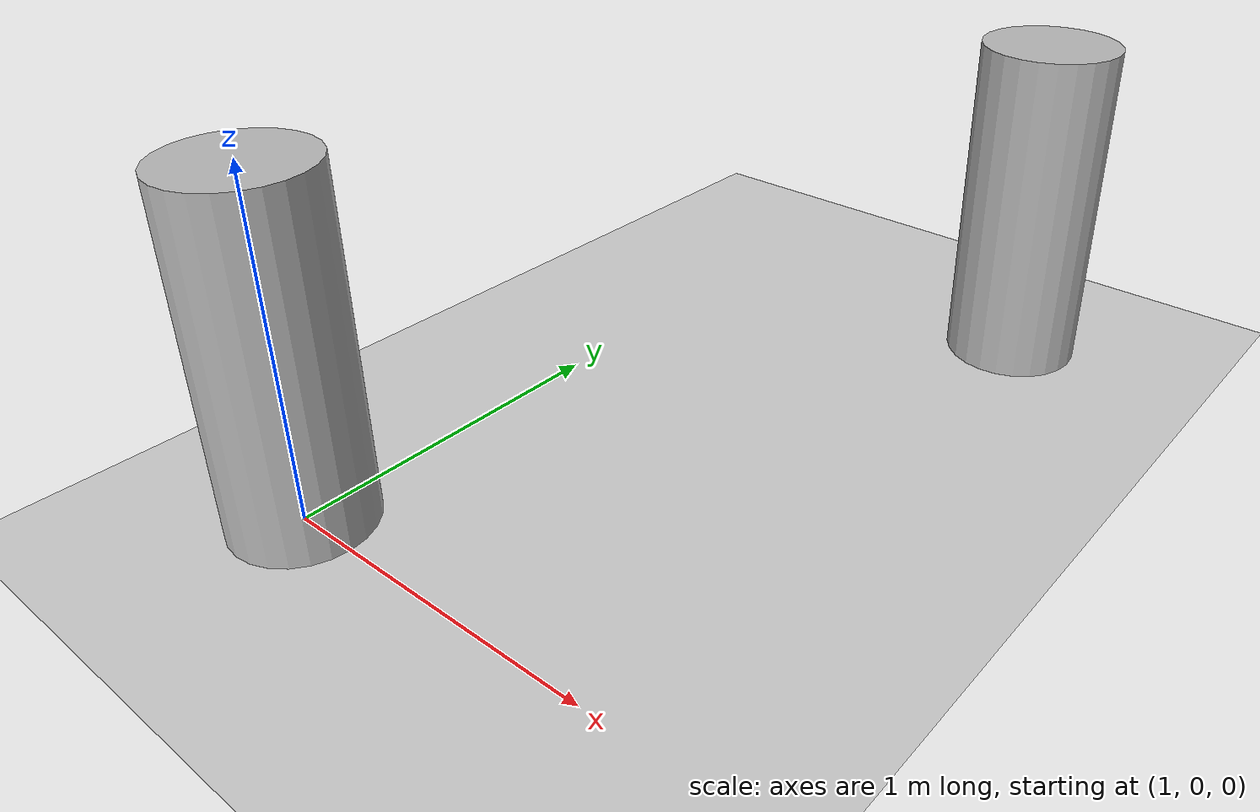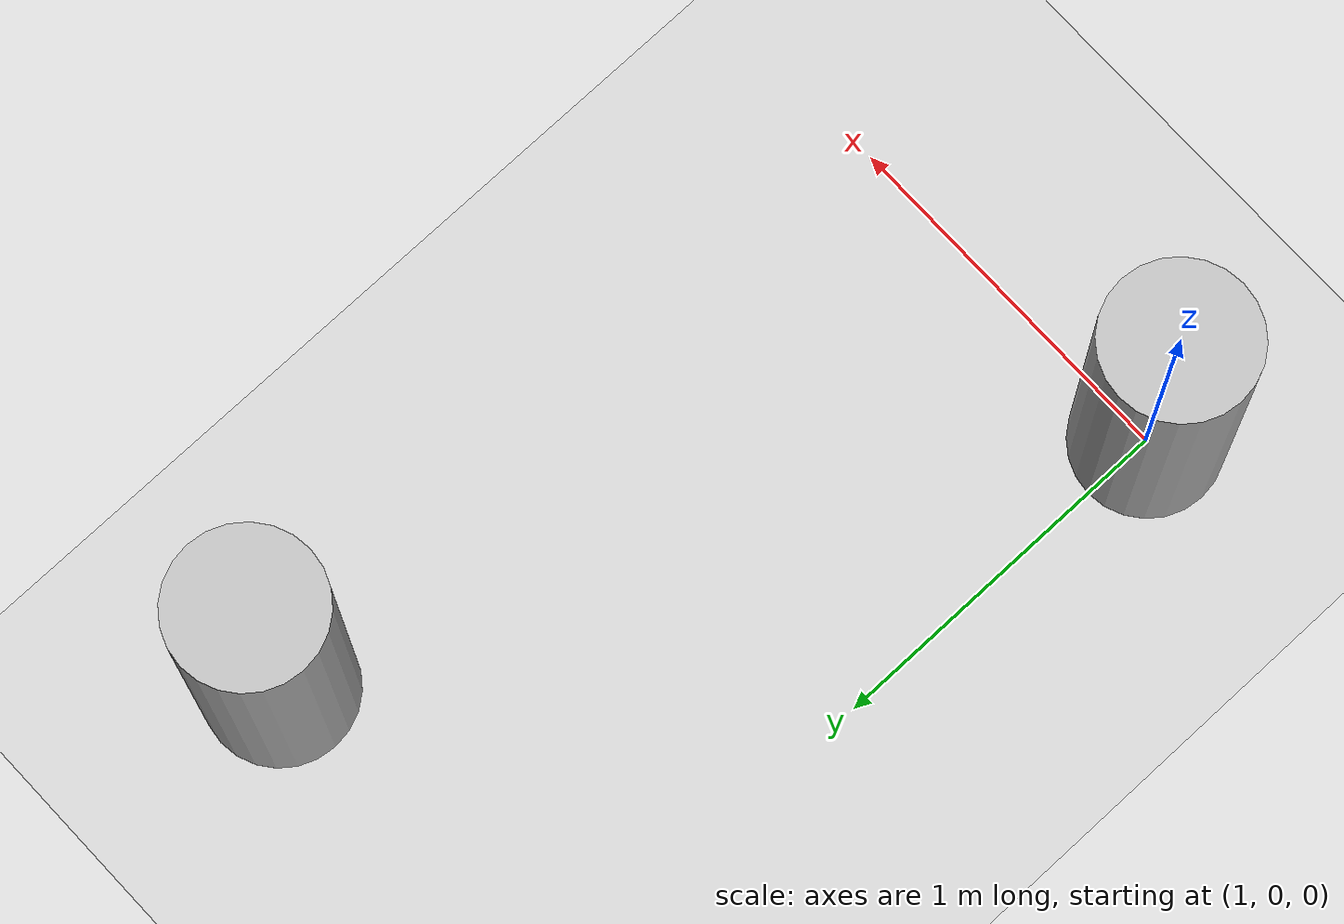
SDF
<?xml version="1.0"?>
<sdf version="1.6">
  <world name="default">

    <include>
      <uri>model://ground_plane</uri>
    </include>

    <include>
      <uri>model://sun</uri>
    </include>

    <model name="cylinder1">
      <pose>2 2 0.5 0.0 0.0 0.0</pose>
      <link name="obs">

        <visual name="visual">
          <geometry>
            <cylinder>
              <radius>0.2</radius>
              <length>1</length>
            </cylinder>
          </geometry>
        </visual>
        <collision name="collision">
          <geometry>
            <cylinder>
              <radius>0.2</radius>
              <length>1</length>
            </cylinder>
          </geometry>
          <laser_retro>50.0</laser_retro>
        </collision>

      </link>
    </model>

    <model name="cylinder2">
      <pose>1 0 0.5 0.0 0.0 0.0</pose>
      <link name="obs">

        <visual name="visual">
          <geometry>
            <cylinder>
              <radius>0.2</radius>
              <length>1</length>
            </cylinder>
          </geometry>
        </visual>
        <collision name="collision">
          <geometry>
            <cylinder>
              <radius>0.2</radius>
              <length>1</length>
            </cylinder>
          </geometry>
          <laser_retro>50.0</laser_retro>
        </collision>

      </link>
    </model>
  </world>
</sdf>
